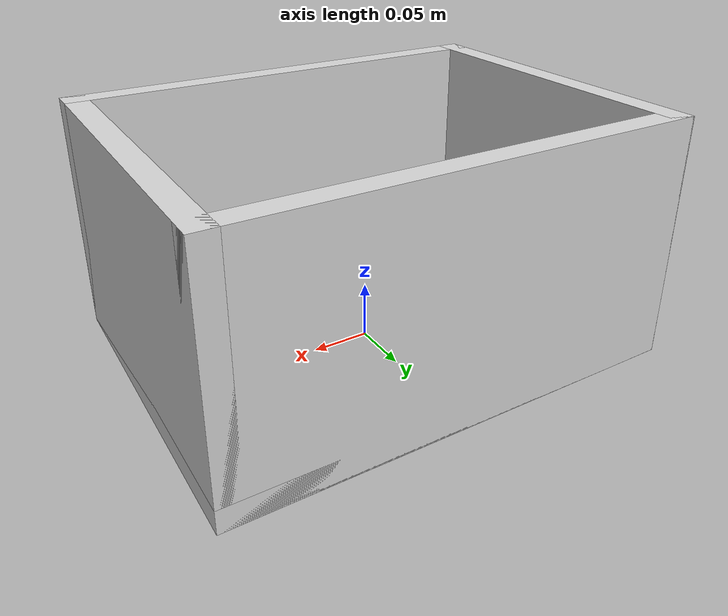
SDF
<?xml version="1.0"?>
<sdf version="1.6">
  <model name="open_top_laundry_basket">
    <static>true</static>

    <link name="base">
      <visual name="bottom_visual">
        <pose>0 0 0.01 0 0 0</pose>
        <geometry><box><size>0.40 0.30 0.02</size></box></geometry>
        <material>
          <ambient>0.85 0.85 0.85 1</ambient>
          <diffuse>0.85 0.85 0.85 1</diffuse>
        </material>
      </visual>
      <collision name="bottom_collision">
        <pose>0 0 0.01 0 0 0</pose>
        <geometry><box><size>0.40 0.30 0.02</size></box></geometry>
      </collision>

      <visual name="left_wall_visual">
        <pose>-0.19 0 0.105 0 0 0</pose>
        <geometry><box><size>0.02 0.30 0.21</size></box></geometry>
        <material>
          <ambient>0.85 0.85 0.85 1</ambient>
          <diffuse>0.85 0.85 0.85 1</diffuse>
        </material>
      </visual>
      <collision name="left_wall_collision">
        <pose>-0.19 0 0.105 0 0 0</pose>
        <geometry><box><size>0.02 0.30 0.21</size></box></geometry>
      </collision>

      <visual name="right_wall_visual">
        <pose>0.19 0 0.105 0 0 0</pose>
        <geometry><box><size>0.02 0.30 0.21</size></box></geometry>
        <material>
          <ambient>0.85 0.85 0.85 1</ambient>
          <diffuse>0.85 0.85 0.85 1</diffuse>
        </material>
      </visual>
      <collision name="right_wall_collision">
        <pose>0.19 0 0.105 0 0 0</pose>
        <geometry><box><size>0.02 0.30 0.21</size></box></geometry>
      </collision>

      <visual name="front_wall_visual">
        <pose>0 0.14 0.105 0 0 0</pose>
        <geometry><box><size>0.40 0.02 0.21</size></box></geometry>
        <material>
          <ambient>0.85 0.85 0.85 1</ambient>
          <diffuse>0.85 0.85 0.85 1</diffuse>
        </material>
      </visual>
      <collision name="front_wall_collision">
        <pose>0 0.14 0.105 0 0 0</pose>
        <geometry><box><size>0.40 0.02 0.21</size></box></geometry>
      </collision>

      <visual name="back_wall_visual">
        <pose>0 -0.14 0.105 0 0 0</pose>
        <geometry><box><size>0.40 0.02 0.21</size></box></geometry>
        <material>
          <ambient>0.85 0.85 0.85 1</ambient>
          <diffuse>0.85 0.85 0.85 1</diffuse>
        </material>
      </visual>
      <collision name="back_wall_collision">
        <pose>0 -0.14 0.105 0 0 0</pose>
        <geometry><box><size>0.40 0.02 0.21</size></box></geometry>
      </collision>
    </link>
  </model>
</sdf>
